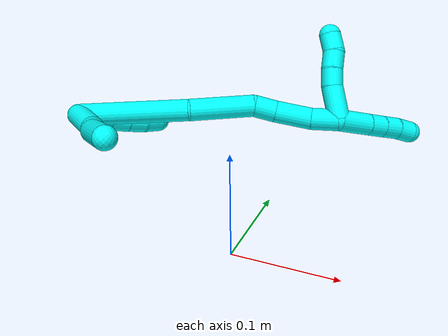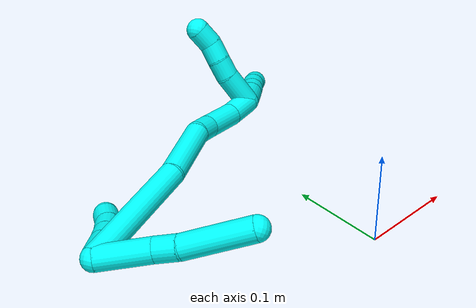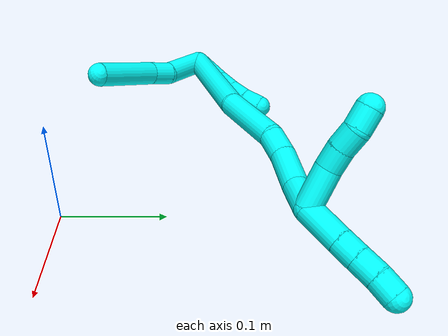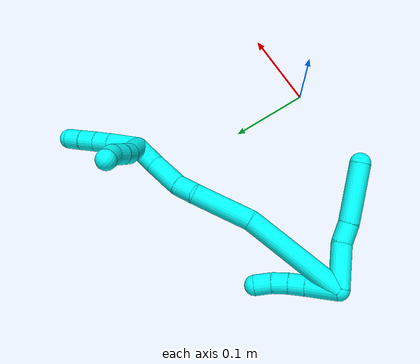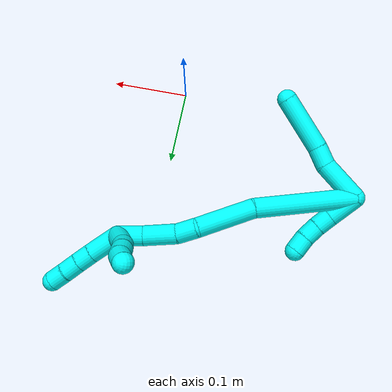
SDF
<sdf version="1.7">
 <world name="default">
  <model name="3">
   <static>0</static>
   <link name="3">
    <collision name="collision-cylinder-e_1_2_8">
     <pose>0.018578 -0.016758 0.010183 1.02477 0.758389 0.440997</pose>
     <geometry><cylinder><radius>0.0125</radius><length>0.054025</length></cylinder></geometry>
     <surface>
      <friction><ode><mu>1.16</mu><mu2>1.16</mu2><slip1>0</slip1><slip2>0</slip2></ode></friction>
      <contact><ode><kp>1e+06</kp><kd>1</kd><max_vel>0</max_vel><min_depth>0.001</min_depth></ode></contact>
     </surface>
    </collision>
    <visual name="visual-cylinder-e_1_2_8">
     <pose>0.018578 -0.016758 0.010183 1.02477 0.758389 0.440997</pose>
     <geometry><cylinder><radius>0.0125</radius><length>0.054025</length></cylinder></geometry>
     <material><ambient>0.003922 1 0.996078 1</ambient></material>
    </visual>
    <collision name="collision-cylinder-e_2_8_9">
     <pose>0.042964 -0.043842 0.024056 1.22761 0.487109 0.346652</pose>
     <geometry><cylinder><radius>0.0125</radius><length>0.024818</length></cylinder></geometry>
     <surface>
      <friction><ode><mu>1.16</mu><mu2>1.16</mu2><slip1>0</slip1><slip2>0</slip2></ode></friction>
      <contact><ode><kp>1e+06</kp><kd>1</kd><max_vel>0</max_vel><min_depth>0.001</min_depth></ode></contact>
     </surface>
    </collision>
    <visual name="visual-cylinder-e_2_8_9">
     <pose>0.042964 -0.043842 0.024056 1.22761 0.487109 0.346652</pose>
     <geometry><cylinder><radius>0.0125</radius><length>0.024818</length></cylinder></geometry>
     <material><ambient>0.003922 1 0.996078 1</ambient></material>
    </visual>
    <collision name="collision-cylinder-e_3_9_6">
     <pose>0.066523 -0.080925 0.043071 1.05065 0.522334 0.307407</pose>
     <geometry><cylinder><radius>0.0125</radius><length>0.071158</length></cylinder></geometry>
     <surface>
      <friction><ode><mu>1.16</mu><mu2>1.16</mu2><slip1>0</slip1><slip2>0</slip2></ode></friction>
      <contact><ode><kp>1e+06</kp><kd>1</kd><max_vel>0</max_vel><min_depth>0.001</min_depth></ode></contact>
     </surface>
    </collision>
    <visual name="visual-cylinder-e_3_9_6">
     <pose>0.066523 -0.080925 0.043071 1.05065 0.522334 0.307407</pose>
     <geometry><cylinder><radius>0.0125</radius><length>0.071158</length></cylinder></geometry>
     <material><ambient>0.003922 1 0.996078 1</ambient></material>
    </visual>
    <collision name="collision-cylinder-e_1_2_10">
     <pose>0.009995 0.014056 0.008623 -1.02051 0.544906 -0.310244</pose>
     <geometry><cylinder><radius>0.0125</radius><length>0.038566</length></cylinder></geometry>
     <surface>
      <friction><ode><mu>1.16</mu><mu2>1.16</mu2><slip1>0</slip1><slip2>0</slip2></ode></friction>
      <contact><ode><kp>1e+06</kp><kd>1</kd><max_vel>0</max_vel><min_depth>0.001</min_depth></ode></contact>
     </surface>
    </collision>
    <visual name="visual-cylinder-e_1_2_10">
     <pose>0.009995 0.014056 0.008623 -1.02051 0.544906 -0.310244</pose>
     <geometry><cylinder><radius>0.0125</radius><length>0.038566</length></cylinder></geometry>
     <material><ambient>0.003922 1 0.996078 1</ambient></material>
    </visual>
    <collision name="collision-cylinder-e_2_10_11">
     <pose>0.024823 0.035551 0.022166 -0.986521 0.496554 -0.270894</pose>
     <geometry><cylinder><radius>0.0125</radius><length>0.020286</length></cylinder></geometry>
     <surface>
      <friction><ode><mu>1.16</mu><mu2>1.16</mu2><slip1>0</slip1><slip2>0</slip2></ode></friction>
      <contact><ode><kp>1e+06</kp><kd>1</kd><max_vel>0</max_vel><min_depth>0.001</min_depth></ode></contact>
     </surface>
    </collision>
    <visual name="visual-cylinder-e_2_10_11">
     <pose>0.024823 0.035551 0.022166 -0.986521 0.496554 -0.270894</pose>
     <geometry><cylinder><radius>0.0125</radius><length>0.020286</length></cylinder></geometry>
     <material><ambient>0.003922 1 0.996078 1</ambient></material>
    </visual>
    <collision name="collision-cylinder-e_3_11_12">
     <pose>0.033691 0.050981 0.03194 -1.02489 0.407511 -0.231441</pose>
     <geometry><cylinder><radius>0.0125</radius><length>0.020369</length></cylinder></geometry>
     <surface>
      <friction><ode><mu>1.16</mu><mu2>1.16</mu2><slip1>0</slip1><slip2>0</slip2></ode></friction>
      <contact><ode><kp>1e+06</kp><kd>1</kd><max_vel>0</max_vel><min_depth>0.001</min_depth></ode></contact>
     </surface>
    </collision>
    <visual name="visual-cylinder-e_3_11_12">
     <pose>0.033691 0.050981 0.03194 -1.02489 0.407511 -0.231441</pose>
     <geometry><cylinder><radius>0.0125</radius><length>0.020369</length></cylinder></geometry>
     <material><ambient>0.003922 1 0.996078 1</ambient></material>
    </visual>
    <collision name="collision-cylinder-e_4_12_5">
     <pose>0.040235 0.067954 0.041374 -1.0993 0.243805 -0.149824</pose>
     <geometry><cylinder><radius>0.0125</radius><length>0.020778</length></cylinder></geometry>
     <surface>
      <friction><ode><mu>1.16</mu><mu2>1.16</mu2><slip1>0</slip1><slip2>0</slip2></ode></friction>
      <contact><ode><kp>1e+06</kp><kd>1</kd><max_vel>0</max_vel><min_depth>0.001</min_depth></ode></contact>
     </surface>
    </collision>
    <visual name="visual-cylinder-e_4_12_5">
     <pose>0.040235 0.067954 0.041374 -1.0993 0.243805 -0.149824</pose>
     <geometry><cylinder><radius>0.0125</radius><length>0.020778</length></cylinder></geometry>
     <material><ambient>0.003922 1 0.996078 1</ambient></material>
    </visual>
    <collision name="collision-cylinder-e_1_2_13">
     <pose>0.037288 0.01502 0.049861 -0.292599 0.621419 -0.094562</pose>
     <geometry><cylinder><radius>0.0125</radius><length>0.128096</length></cylinder></geometry>
     <surface>
      <friction><ode><mu>1.16</mu><mu2>1.16</mu2><slip1>0</slip1><slip2>0</slip2></ode></friction>
      <contact><ode><kp>1e+06</kp><kd>1</kd><max_vel>0</max_vel><min_depth>0.001</min_depth></ode></contact>
     </surface>
    </collision>
    <visual name="visual-cylinder-e_1_2_13">
     <pose>0.037288 0.01502 0.049861 -0.292599 0.621419 -0.094562</pose>
     <geometry><cylinder><radius>0.0125</radius><length>0.128096</length></cylinder></geometry>
     <material><ambient>0.003922 1 0.996078 1</ambient></material>
    </visual>
    <collision name="collision-cylinder-e_2_13_14">
     <pose>0.092921 0.046131 0.126765 -0.536725 0.527803 -0.148337</pose>
     <geometry><cylinder><radius>0.0125</radius><length>0.072849</length></cylinder></geometry>
     <surface>
      <friction><ode><mu>1.16</mu><mu2>1.16</mu2><slip1>0</slip1><slip2>0</slip2></ode></friction>
      <contact><ode><kp>1e+06</kp><kd>1</kd><max_vel>0</max_vel><min_depth>0.001</min_depth></ode></contact>
     </surface>
    </collision>
    <visual name="visual-cylinder-e_2_13_14">
     <pose>0.092921 0.046131 0.126765 -0.536725 0.527803 -0.148337</pose>
     <geometry><cylinder><radius>0.0125</radius><length>0.072849</length></cylinder></geometry>
     <material><ambient>0.003922 1 0.996078 1</ambient></material>
    </visual>
    <collision name="collision-cylinder-e_3_14_15">
     <pose>0.120657 0.068153 0.160432 -0.73041 0.812717 -0.326141</pose>
     <geometry><cylinder><radius>0.0125</radius><length>0.025865</length></cylinder></geometry>
     <surface>
      <friction><ode><mu>1.16</mu><mu2>1.16</mu2><slip1>0</slip1><slip2>0</slip2></ode></friction>
      <contact><ode><kp>1e+06</kp><kd>1</kd><max_vel>0</max_vel><min_depth>0.001</min_depth></ode></contact>
     </surface>
    </collision>
    <visual name="visual-cylinder-e_3_14_15">
     <pose>0.120657 0.068153 0.160432 -0.73041 0.812717 -0.326141</pose>
     <geometry><cylinder><radius>0.0125</radius><length>0.025865</length></cylinder></geometry>
     <material><ambient>0.003922 1 0.996078 1</ambient></material>
    </visual>
    <collision name="collision-cylinder-e_4_15_16">
     <pose>0.145981 0.078928 0.179837 -0.362129 0.861753 -0.167912</pose>
     <geometry><cylinder><radius>0.0125</radius><length>0.041985</length></cylinder></geometry>
     <surface>
      <friction><ode><mu>1.16</mu><mu2>1.16</mu2><slip1>0</slip1><slip2>0</slip2></ode></friction>
      <contact><ode><kp>1e+06</kp><kd>1</kd><max_vel>0</max_vel><min_depth>0.001</min_depth></ode></contact>
     </surface>
    </collision>
    <visual name="visual-cylinder-e_4_15_16">
     <pose>0.145981 0.078928 0.179837 -0.362129 0.861753 -0.167912</pose>
     <geometry><cylinder><radius>0.0125</radius><length>0.041985</length></cylinder></geometry>
     <material><ambient>0.003922 1 0.996078 1</ambient></material>
    </visual>
    <collision name="collision-cylinder-e_5_16_1">
     <pose>0.172282 0.086111 0.20404 -0.20214 0.726895 -0.077107</pose>
     <geometry><cylinder><radius>0.0125</radius><length>0.031205</length></cylinder></geometry>
     <surface>
      <friction><ode><mu>1.16</mu><mu2>1.16</mu2><slip1>0</slip1><slip2>0</slip2></ode></friction>
      <contact><ode><kp>1e+06</kp><kd>1</kd><max_vel>0</max_vel><min_depth>0.001</min_depth></ode></contact>
     </surface>
    </collision>
    <visual name="visual-cylinder-e_5_16_1">
     <pose>0.172282 0.086111 0.20404 -0.20214 0.726895 -0.077107</pose>
     <geometry><cylinder><radius>0.0125</radius><length>0.031205</length></cylinder></geometry>
     <material><ambient>0.003922 1 0.996078 1</ambient></material>
    </visual>
    <collision name="collision-cylinder-e_1_1_17">
     <pose>0.19312 0.101626 0.225049 -0.941702 0.571086 -0.296675</pose>
     <geometry><cylinder><radius>0.0125</radius><length>0.038734</length></cylinder></geometry>
     <surface>
      <friction><ode><mu>1.16</mu><mu2>1.16</mu2><slip1>0</slip1><slip2>0</slip2></ode></friction>
      <contact><ode><kp>1e+06</kp><kd>1</kd><max_vel>0</max_vel><min_depth>0.001</min_depth></ode></contact>
     </surface>
    </collision>
    <visual name="visual-cylinder-e_1_1_17">
     <pose>0.19312 0.101626 0.225049 -0.941702 0.571086 -0.296675</pose>
     <geometry><cylinder><radius>0.0125</radius><length>0.038734</length></cylinder></geometry>
     <material><ambient>0.003922 1 0.996078 1</ambient></material>
    </visual>
    <collision name="collision-cylinder-e_2_17_18">
     <pose>0.208851 0.121812 0.239545 -0.960006 0.551294 -0.292407</pose>
     <geometry><cylinder><radius>0.0125</radius><length>0.020096</length></cylinder></geometry>
     <surface>
      <friction><ode><mu>1.16</mu><mu2>1.16</mu2><slip1>0</slip1><slip2>0</slip2></ode></friction>
      <contact><ode><kp>1e+06</kp><kd>1</kd><max_vel>0</max_vel><min_depth>0.001</min_depth></ode></contact>
     </surface>
    </collision>
    <visual name="visual-cylinder-e_2_17_18">
     <pose>0.208851 0.121812 0.239545 -0.960006 0.551294 -0.292407</pose>
     <geometry><cylinder><radius>0.0125</radius><length>0.020096</length></cylinder></geometry>
     <material><ambient>0.003922 1 0.996078 1</ambient></material>
    </visual>
    <collision name="collision-cylinder-e_3_18_19">
     <pose>0.219461 0.136241 0.249503 -0.973125 0.537421 -0.289297</pose>
     <geometry><cylinder><radius>0.0125</radius><length>0.02089</length></cylinder></geometry>
     <surface>
      <friction><ode><mu>1.16</mu><mu2>1.16</mu2><slip1>0</slip1><slip2>0</slip2></ode></friction>
      <contact><ode><kp>1e+06</kp><kd>1</kd><max_vel>0</max_vel><min_depth>0.001</min_depth></ode></contact>
     </surface>
    </collision>
    <visual name="visual-cylinder-e_3_18_19">
     <pose>0.219461 0.136241 0.249503 -0.973125 0.537421 -0.289297</pose>
     <geometry><cylinder><radius>0.0125</radius><length>0.02089</length></cylinder></geometry>
     <material><ambient>0.003922 1 0.996078 1</ambient></material>
    </visual>
    <collision name="collision-cylinder-e_4_19_4">
     <pose>0.230786 0.150691 0.258752 -1.03239 0.63039 -0.365958</pose>
     <geometry><cylinder><radius>0.0125</radius><length>0.02028</length></cylinder></geometry>
     <surface>
      <friction><ode><mu>1.16</mu><mu2>1.16</mu2><slip1>0</slip1><slip2>0</slip2></ode></friction>
      <contact><ode><kp>1e+06</kp><kd>1</kd><max_vel>0</max_vel><min_depth>0.001</min_depth></ode></contact>
     </surface>
    </collision>
    <visual name="visual-cylinder-e_4_19_4">
     <pose>0.230786 0.150691 0.258752 -1.03239 0.63039 -0.365958</pose>
     <geometry><cylinder><radius>0.0125</radius><length>0.02028</length></cylinder></geometry>
     <material><ambient>0.003922 1 0.996078 1</ambient></material>
    </visual>
    <collision name="collision-cylinder-e_1_1_20">
     <pose>0.165251 0.089299 0.224393 -0.0946 -1.09474 0.057685</pose>
     <geometry><cylinder><radius>0.0125</radius><length>0.039153</length></cylinder></geometry>
     <surface>
      <friction><ode><mu>1.16</mu><mu2>1.16</mu2><slip1>0</slip1><slip2>0</slip2></ode></friction>
      <contact><ode><kp>1e+06</kp><kd>1</kd><max_vel>0</max_vel><min_depth>0.001</min_depth></ode></contact>
     </surface>
    </collision>
    <visual name="visual-cylinder-e_1_1_20">
     <pose>0.165251 0.089299 0.224393 -0.0946 -1.09474 0.057685</pose>
     <geometry><cylinder><radius>0.0125</radius><length>0.039153</length></cylinder></geometry>
     <material><ambient>0.003922 1 0.996078 1</ambient></material>
    </visual>
    <collision name="collision-cylinder-e_2_20_21">
     <pose>0.139937 0.090509 0.239631 -0.057506 -0.897196 0.027685</pose>
     <geometry><cylinder><radius>0.0125</radius><length>0.020253</length></cylinder></geometry>
     <surface>
      <friction><ode><mu>1.16</mu><mu2>1.16</mu2><slip1>0</slip1><slip2>0</slip2></ode></friction>
      <contact><ode><kp>1e+06</kp><kd>1</kd><max_vel>0</max_vel><min_depth>0.001</min_depth></ode></contact>
     </surface>
    </collision>
    <visual name="visual-cylinder-e_2_20_21">
     <pose>0.139937 0.090509 0.239631 -0.057506 -0.897196 0.027685</pose>
     <geometry><cylinder><radius>0.0125</radius><length>0.020253</length></cylinder></geometry>
     <material><ambient>0.003922 1 0.996078 1</ambient></material>
    </visual>
    <collision name="collision-cylinder-e_3_21_22">
     <pose>0.12482 0.092281 0.252845 -0.201101 -0.796149 0.084803</pose>
     <geometry><cylinder><radius>0.0125</radius><length>0.020157</length></cylinder></geometry>
     <surface>
      <friction><ode><mu>1.16</mu><mu2>1.16</mu2><slip1>0</slip1><slip2>0</slip2></ode></friction>
      <contact><ode><kp>1e+06</kp><kd>1</kd><max_vel>0</max_vel><min_depth>0.001</min_depth></ode></contact>
     </surface>
    </collision>
    <visual name="visual-cylinder-e_3_21_22">
     <pose>0.12482 0.092281 0.252845 -0.201101 -0.796149 0.084803</pose>
     <geometry><cylinder><radius>0.0125</radius><length>0.020157</length></cylinder></geometry>
     <material><ambient>0.003922 1 0.996078 1</ambient></material>
    </visual>
    <collision name="collision-cylinder-e_4_22_3">
     <pose>0.108415 0.094835 0.264045 -0.261 -1.12098 0.164376</pose>
     <geometry><cylinder><radius>0.0125</radius><length>0.020437</length></cylinder></geometry>
     <surface>
      <friction><ode><mu>1.16</mu><mu2>1.16</mu2><slip1>0</slip1><slip2>0</slip2></ode></friction>
      <contact><ode><kp>1e+06</kp><kd>1</kd><max_vel>0</max_vel><min_depth>0.001</min_depth></ode></contact>
     </surface>
    </collision>
    <visual name="visual-cylinder-e_4_22_3">
     <pose>0.108415 0.094835 0.264045 -0.261 -1.12098 0.164376</pose>
     <geometry><cylinder><radius>0.0125</radius><length>0.020437</length></cylinder></geometry>
     <material><ambient>0.003922 1 0.996078 1</ambient></material>
    </visual>
    <collision name="collision-sphere-3">
     <pose>0.099213 0.095982 0.268337 0 -0 0</pose>
     <geometry><sphere><radius>0.0125</radius></sphere></geometry>
     <surface>
      <friction><ode><mu>1.16</mu><mu2>1.16</mu2><slip1>0</slip1><slip2>0</slip2></ode></friction>
      <contact><ode><kp>1e+06</kp><kd>1</kd><max_vel>0</max_vel><min_depth>0.001</min_depth></ode></contact>
     </surface>
    </collision>
    <visual name="visual-sphere-3">
     <pose>0.099213 0.095982 0.268337 0 -0 0</pose>
     <geometry><sphere><radius>0.0125</radius></sphere></geometry>
     <material><ambient>0.003922 1 0.996078 1</ambient></material>
    </visual>
    <collision name="collision-sphere-22">
     <pose>0.117617 0.093689 0.259752 0 -0 0</pose>
     <geometry><sphere><radius>0.0125</radius></sphere></geometry>
     <surface>
      <friction><ode><mu>1.16</mu><mu2>1.16</mu2><slip1>0</slip1><slip2>0</slip2></ode></friction>
      <contact><ode><kp>1e+06</kp><kd>1</kd><max_vel>0</max_vel><min_depth>0.001</min_depth></ode></contact>
     </surface>
    </collision>
    <visual name="visual-sphere-22">
     <pose>0.117617 0.093689 0.259752 0 -0 0</pose>
     <geometry><sphere><radius>0.0125</radius></sphere></geometry>
     <material><ambient>0.003922 1 0.996078 1</ambient></material>
    </visual>
    <collision name="collision-sphere-21">
     <pose>0.132022 0.090872 0.245937 0 -0 0</pose>
     <geometry><sphere><radius>0.0125</radius></sphere></geometry>
     <surface>
      <friction><ode><mu>1.16</mu><mu2>1.16</mu2><slip1>0</slip1><slip2>0</slip2></ode></friction>
      <contact><ode><kp>1e+06</kp><kd>1</kd><max_vel>0</max_vel><min_depth>0.001</min_depth></ode></contact>
     </surface>
    </collision>
    <visual name="visual-sphere-21">
     <pose>0.132022 0.090872 0.245937 0 -0 0</pose>
     <geometry><sphere><radius>0.0125</radius></sphere></geometry>
     <material><ambient>0.003922 1 0.996078 1</ambient></material>
    </visual>
    <collision name="collision-sphere-20">
     <pose>0.147852 0.090146 0.233324 0 -0 0</pose>
     <geometry><sphere><radius>0.0125</radius></sphere></geometry>
     <surface>
      <friction><ode><mu>1.16</mu><mu2>1.16</mu2><slip1>0</slip1><slip2>0</slip2></ode></friction>
      <contact><ode><kp>1e+06</kp><kd>1</kd><max_vel>0</max_vel><min_depth>0.001</min_depth></ode></contact>
     </surface>
    </collision>
    <visual name="visual-sphere-20">
     <pose>0.147852 0.090146 0.233324 0 -0 0</pose>
     <geometry><sphere><radius>0.0125</radius></sphere></geometry>
     <material><ambient>0.003922 1 0.996078 1</ambient></material>
    </visual>
    <collision name="collision-sphere-4">
     <pose>0.236763 0.157723 0.262953 0 -0 0</pose>
     <geometry><sphere><radius>0.0125</radius></sphere></geometry>
     <surface>
      <friction><ode><mu>1.16</mu><mu2>1.16</mu2><slip1>0</slip1><slip2>0</slip2></ode></friction>
      <contact><ode><kp>1e+06</kp><kd>1</kd><max_vel>0</max_vel><min_depth>0.001</min_depth></ode></contact>
     </surface>
    </collision>
    <visual name="visual-sphere-4">
     <pose>0.236763 0.157723 0.262953 0 -0 0</pose>
     <geometry><sphere><radius>0.0125</radius></sphere></geometry>
     <material><ambient>0.003922 1 0.996078 1</ambient></material>
    </visual>
    <collision name="collision-sphere-11">
     <pose>0.029655 0.04299 0.027085 0 -0 0</pose>
     <geometry><sphere><radius>0.0125</radius></sphere></geometry>
     <surface>
      <friction><ode><mu>1.16</mu><mu2>1.16</mu2><slip1>0</slip1><slip2>0</slip2></ode></friction>
      <contact><ode><kp>1e+06</kp><kd>1</kd><max_vel>0</max_vel><min_depth>0.001</min_depth></ode></contact>
     </surface>
    </collision>
    <visual name="visual-sphere-11">
     <pose>0.029655 0.04299 0.027085 0 -0 0</pose>
     <geometry><sphere><radius>0.0125</radius></sphere></geometry>
     <material><ambient>0.003922 1 0.996078 1</ambient></material>
    </visual>
    <collision name="collision-sphere-10">
     <pose>0.01999 0.028112 0.017247 0 -0 0</pose>
     <geometry><sphere><radius>0.0125</radius></sphere></geometry>
     <surface>
      <friction><ode><mu>1.16</mu><mu2>1.16</mu2><slip1>0</slip1><slip2>0</slip2></ode></friction>
      <contact><ode><kp>1e+06</kp><kd>1</kd><max_vel>0</max_vel><min_depth>0.001</min_depth></ode></contact>
     </surface>
    </collision>
    <visual name="visual-sphere-10">
     <pose>0.01999 0.028112 0.017247 0 -0 0</pose>
     <geometry><sphere><radius>0.0125</radius></sphere></geometry>
     <material><ambient>0.003922 1 0.996078 1</ambient></material>
    </visual>
    <collision name="collision-sphere-6">
     <pose>0.084273 -0.107682 0.058396 0 -0 0</pose>
     <geometry><sphere><radius>0.0125</radius></sphere></geometry>
     <surface>
      <friction><ode><mu>1.16</mu><mu2>1.16</mu2><slip1>0</slip1><slip2>0</slip2></ode></friction>
      <contact><ode><kp>1e+06</kp><kd>1</kd><max_vel>0</max_vel><min_depth>0.001</min_depth></ode></contact>
     </surface>
    </collision>
    <visual name="visual-sphere-6">
     <pose>0.084273 -0.107682 0.058396 0 -0 0</pose>
     <geometry><sphere><radius>0.0125</radius></sphere></geometry>
     <material><ambient>0.003922 1 0.996078 1</ambient></material>
    </visual>
    <collision name="collision-sphere-9">
     <pose>0.048772 -0.054169 0.027746 0 -0 0</pose>
     <geometry><sphere><radius>0.0125</radius></sphere></geometry>
     <surface>
      <friction><ode><mu>1.16</mu><mu2>1.16</mu2><slip1>0</slip1><slip2>0</slip2></ode></friction>
      <contact><ode><kp>1e+06</kp><kd>1</kd><max_vel>0</max_vel><min_depth>0.001</min_depth></ode></contact>
     </surface>
    </collision>
    <visual name="visual-sphere-9">
     <pose>0.048772 -0.054169 0.027746 0 -0 0</pose>
     <geometry><sphere><radius>0.0125</radius></sphere></geometry>
     <material><ambient>0.003922 1 0.996078 1</ambient></material>
    </visual>
    <collision name="collision-sphere-2">
     <geometry><sphere><radius>0.0125</radius></sphere></geometry>
     <surface>
      <friction><ode><mu>1.16</mu><mu2>1.16</mu2><slip1>0</slip1><slip2>0</slip2></ode></friction>
      <contact><ode><kp>1e+06</kp><kd>1</kd><max_vel>0</max_vel><min_depth>0.001</min_depth></ode></contact>
     </surface>
    </collision>
    <visual name="visual-sphere-2">
     <geometry><sphere><radius>0.0125</radius></sphere></geometry>
     <material><ambient>0.003922 1 0.996078 1</ambient></material>
    </visual>
    <collision name="collision-sphere-19">
     <pose>0.224808 0.143658 0.254552 0 -0 0</pose>
     <geometry><sphere><radius>0.0125</radius></sphere></geometry>
     <surface>
      <friction><ode><mu>1.16</mu><mu2>1.16</mu2><slip1>0</slip1><slip2>0</slip2></ode></friction>
      <contact><ode><kp>1e+06</kp><kd>1</kd><max_vel>0</max_vel><min_depth>0.001</min_depth></ode></contact>
     </surface>
    </collision>
    <visual name="visual-sphere-19">
     <pose>0.224808 0.143658 0.254552 0 -0 0</pose>
     <geometry><sphere><radius>0.0125</radius></sphere></geometry>
     <material><ambient>0.003922 1 0.996078 1</ambient></material>
    </visual>
    <collision name="collision-sphere-8">
     <pose>0.037156 -0.033516 0.020366 0 -0 0</pose>
     <geometry><sphere><radius>0.0125</radius></sphere></geometry>
     <surface>
      <friction><ode><mu>1.16</mu><mu2>1.16</mu2><slip1>0</slip1><slip2>0</slip2></ode></friction>
      <contact><ode><kp>1e+06</kp><kd>1</kd><max_vel>0</max_vel><min_depth>0.001</min_depth></ode></contact>
     </surface>
    </collision>
    <visual name="visual-sphere-8">
     <pose>0.037156 -0.033516 0.020366 0 -0 0</pose>
     <geometry><sphere><radius>0.0125</radius></sphere></geometry>
     <material><ambient>0.003922 1 0.996078 1</ambient></material>
    </visual>
    <collision name="collision-sphere-12">
     <pose>0.037727 0.058973 0.036795 0 -0 0</pose>
     <geometry><sphere><radius>0.0125</radius></sphere></geometry>
     <surface>
      <friction><ode><mu>1.16</mu><mu2>1.16</mu2><slip1>0</slip1><slip2>0</slip2></ode></friction>
      <contact><ode><kp>1e+06</kp><kd>1</kd><max_vel>0</max_vel><min_depth>0.001</min_depth></ode></contact>
     </surface>
    </collision>
    <visual name="visual-sphere-12">
     <pose>0.037727 0.058973 0.036795 0 -0 0</pose>
     <geometry><sphere><radius>0.0125</radius></sphere></geometry>
     <material><ambient>0.003922 1 0.996078 1</ambient></material>
    </visual>
    <collision name="collision-sphere-5">
     <pose>0.042743 0.076936 0.045954 0 -0 0</pose>
     <geometry><sphere><radius>0.0125</radius></sphere></geometry>
     <surface>
      <friction><ode><mu>1.16</mu><mu2>1.16</mu2><slip1>0</slip1><slip2>0</slip2></ode></friction>
      <contact><ode><kp>1e+06</kp><kd>1</kd><max_vel>0</max_vel><min_depth>0.001</min_depth></ode></contact>
     </surface>
    </collision>
    <visual name="visual-sphere-5">
     <pose>0.042743 0.076936 0.045954 0 -0 0</pose>
     <geometry><sphere><radius>0.0125</radius></sphere></geometry>
     <material><ambient>0.003922 1 0.996078 1</ambient></material>
    </visual>
    <collision name="collision-sphere-13">
     <pose>0.074576 0.030041 0.099723 0 -0 0</pose>
     <geometry><sphere><radius>0.0125</radius></sphere></geometry>
     <surface>
      <friction><ode><mu>1.16</mu><mu2>1.16</mu2><slip1>0</slip1><slip2>0</slip2></ode></friction>
      <contact><ode><kp>1e+06</kp><kd>1</kd><max_vel>0</max_vel><min_depth>0.001</min_depth></ode></contact>
     </surface>
    </collision>
    <visual name="visual-sphere-13">
     <pose>0.074576 0.030041 0.099723 0 -0 0</pose>
     <geometry><sphere><radius>0.0125</radius></sphere></geometry>
     <material><ambient>0.003922 1 0.996078 1</ambient></material>
    </visual>
    <collision name="collision-sphere-14">
     <pose>0.111266 0.062221 0.153808 0 -0 0</pose>
     <geometry><sphere><radius>0.0125</radius></sphere></geometry>
     <surface>
      <friction><ode><mu>1.16</mu><mu2>1.16</mu2><slip1>0</slip1><slip2>0</slip2></ode></friction>
      <contact><ode><kp>1e+06</kp><kd>1</kd><max_vel>0</max_vel><min_depth>0.001</min_depth></ode></contact>
     </surface>
    </collision>
    <visual name="visual-sphere-14">
     <pose>0.111266 0.062221 0.153808 0 -0 0</pose>
     <geometry><sphere><radius>0.0125</radius></sphere></geometry>
     <material><ambient>0.003922 1 0.996078 1</ambient></material>
    </visual>
    <collision name="collision-sphere-15">
     <pose>0.130048 0.074085 0.167055 0 -0 0</pose>
     <geometry><sphere><radius>0.0125</radius></sphere></geometry>
     <surface>
      <friction><ode><mu>1.16</mu><mu2>1.16</mu2><slip1>0</slip1><slip2>0</slip2></ode></friction>
      <contact><ode><kp>1e+06</kp><kd>1</kd><max_vel>0</max_vel><min_depth>0.001</min_depth></ode></contact>
     </surface>
    </collision>
    <visual name="visual-sphere-15">
     <pose>0.130048 0.074085 0.167055 0 -0 0</pose>
     <geometry><sphere><radius>0.0125</radius></sphere></geometry>
     <material><ambient>0.003922 1 0.996078 1</ambient></material>
    </visual>
    <collision name="collision-sphere-16">
     <pose>0.161914 0.08377 0.192619 0 -0 0</pose>
     <geometry><sphere><radius>0.0125</radius></sphere></geometry>
     <surface>
      <friction><ode><mu>1.16</mu><mu2>1.16</mu2><slip1>0</slip1><slip2>0</slip2></ode></friction>
      <contact><ode><kp>1e+06</kp><kd>1</kd><max_vel>0</max_vel><min_depth>0.001</min_depth></ode></contact>
     </surface>
    </collision>
    <visual name="visual-sphere-16">
     <pose>0.161914 0.08377 0.192619 0 -0 0</pose>
     <geometry><sphere><radius>0.0125</radius></sphere></geometry>
     <material><ambient>0.003922 1 0.996078 1</ambient></material>
    </visual>
    <collision name="collision-sphere-1">
     <pose>0.182651 0.088451 0.215462 0 -0 0</pose>
     <geometry><sphere><radius>0.0125</radius></sphere></geometry>
     <surface>
      <friction><ode><mu>1.16</mu><mu2>1.16</mu2><slip1>0</slip1><slip2>0</slip2></ode></friction>
      <contact><ode><kp>1e+06</kp><kd>1</kd><max_vel>0</max_vel><min_depth>0.001</min_depth></ode></contact>
     </surface>
    </collision>
    <visual name="visual-sphere-1">
     <pose>0.182651 0.088451 0.215462 0 -0 0</pose>
     <geometry><sphere><radius>0.0125</radius></sphere></geometry>
     <material><ambient>0.003922 1 0.996078 1</ambient></material>
    </visual>
    <collision name="collision-sphere-18">
     <pose>0.214114 0.128824 0.244454 0 -0 0</pose>
     <geometry><sphere><radius>0.0125</radius></sphere></geometry>
     <surface>
      <friction><ode><mu>1.16</mu><mu2>1.16</mu2><slip1>0</slip1><slip2>0</slip2></ode></friction>
      <contact><ode><kp>1e+06</kp><kd>1</kd><max_vel>0</max_vel><min_depth>0.001</min_depth></ode></contact>
     </surface>
    </collision>
    <visual name="visual-sphere-18">
     <pose>0.214114 0.128824 0.244454 0 -0 0</pose>
     <geometry><sphere><radius>0.0125</radius></sphere></geometry>
     <material><ambient>0.003922 1 0.996078 1</ambient></material>
    </visual>
    <collision name="collision-sphere-17">
     <pose>0.203588 0.1148 0.234636 0 -0 0</pose>
     <geometry><sphere><radius>0.0125</radius></sphere></geometry>
     <surface>
      <friction><ode><mu>1.16</mu><mu2>1.16</mu2><slip1>0</slip1><slip2>0</slip2></ode></friction>
      <contact><ode><kp>1e+06</kp><kd>1</kd><max_vel>0</max_vel><min_depth>0.001</min_depth></ode></contact>
     </surface>
    </collision>
    <visual name="visual-sphere-17">
     <pose>0.203588 0.1148 0.234636 0 -0 0</pose>
     <geometry><sphere><radius>0.0125</radius></sphere></geometry>
     <material><ambient>0.003922 1 0.996078 1</ambient></material>
    </visual>
    <inertial>
     <pose>0.093819 0.040566 0.117754 0 -0 0</pose>
     <mass>0.75</mass>
     <inertia>
      <ixx>0.000259</ixx>
      <ixy>0</ixy>
      <ixz>0</ixz>
      <iyy>0.000276</iyy>
      <iyz>0</iyz>
      <izz>-0.000171</izz>
     </inertia>
    </inertial>
   </link>
   <pose>-0.240194 0.122982 0.044982 -0.5682 0.642904 -0.348203</pose>
  </model>
 </world>
</sdf>
